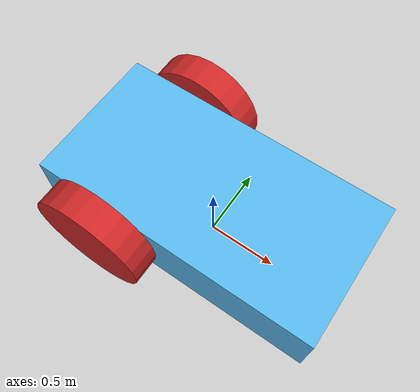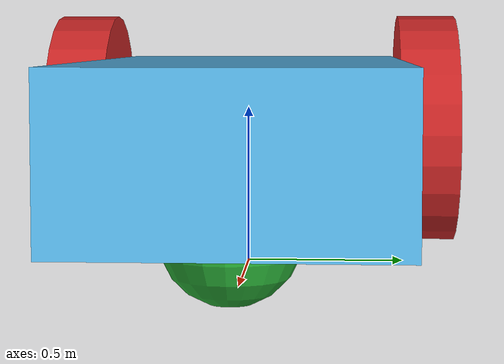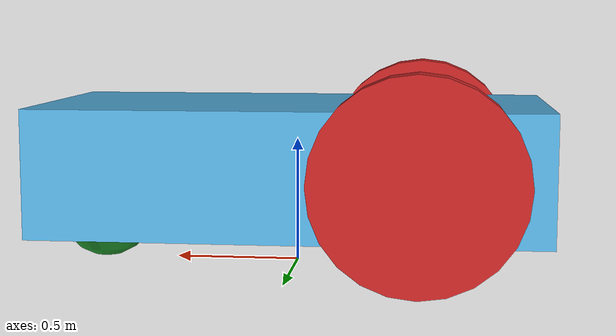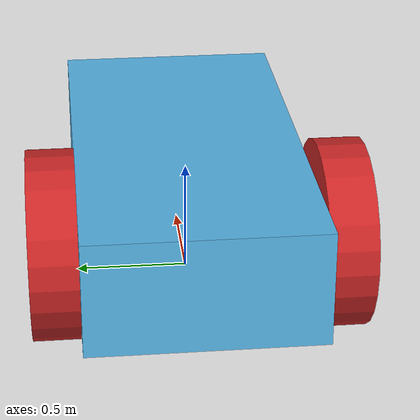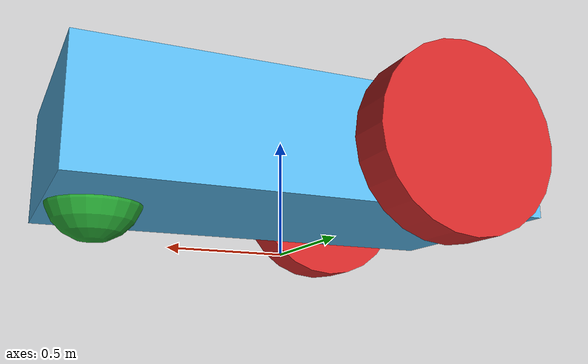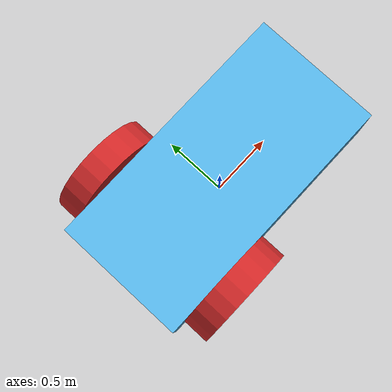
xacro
<?xml version="1.0"?>
<robot name="clown_car" xmlns:xacro="http://ros.org/wiki/xacro">

    <!-- Define robot constants -->
    <xacro:property name="base_width" value="1.0" />
    <xacro:property name="base_length" value="2.0" />
    <xacro:property name="base_height" value="0.5" />

    <xacro:property name="wheel_radius" value="0.4" />
    <xacro:property name="wheel_width" value="0.2" />
    <xacro:property name="wheel_ygap" value="1.2" />
    <xacro:property name="wheel_zoff" value="0.0" />
    <xacro:property name="wheel_xoff" value="-0.5" />

    <xacro:property name="caster_xoff" value="0.8" />
    <xacro:property name="caster_zoff" value="-0.2" />
    <xacro:property name="imu_zoff" value="0.15" />
    <xacro:property name="lidar_zoff" value="0.25" />
    <xacro:property name="base_link_zoff" value="0.4" />

    <link name="base_footprint">
        <inertial>
        <mass value="0.01" />
        <inertia ixx="0.0001" ixy="0.0" ixz="0.0" iyy="0.0001" iyz="0.0" izz="0.0001" />
        </inertial>
    </link>

    <joint name="base_footprint_joint" type="fixed">
        <parent link="base_footprint" />
        <child link="base_link" />
        <origin xyz="0 0 ${base_link_zoff}" rpy="0 0 0" />
    </joint>

    <link name="base_link">
        <inertial>
            <origin xyz="0 0 0" rpy="0 0 0" />
            <mass value="1.14395" />
            <inertia ixx="0.095329" ixy="0.0" ixz="0.0" iyy="0.381317" iyz="0.0" izz="0.476646" />
        </inertial>
        <visual>
            <origin xyz="0 0 0" rpy="0 0 0" />
            <geometry>
                <box size="${base_length} ${base_width} ${base_height}" />
            </geometry>
        </visual>
        <collision>
            <origin xyz="0 0 0" rpy="0 0 0" />
            <geometry>
                <box size="${base_length} ${base_width} ${base_height}" />
            </geometry>
        </collision>
    </link>

    <link name="imu_link" />

    <joint name="imu_joint" type="fixed">
        <parent link="base_link" />
        <child link="imu_link" />
        <origin xyz="0 0 ${imu_zoff}" rpy="0 0 0" />
    </joint>

    <link name="lidar_link" />

    <joint name="lidar_joint" type="fixed">
        <parent link="base_link" />
        <child link="lidar_link" />
        <origin xyz="0 0 ${lidar_zoff}" rpy="0 0 0" />
    </joint>

    <gazebo reference="imu_link">
        <sensor name="imu_sensor" type="imu">
            <always_on>1</always_on>
            <update_rate>100</update_rate>
            <visualize>true</visualize>
            <topic>/imu</topic>
            <gz_frame_id>imu_link</gz_frame_id>
        </sensor>
    </gazebo>

    <gazebo reference="lidar_link">
        <material>Gazebo/Blue</material>

        <sensor name="gpu_lidar" type="gpu_lidar">
            <gz_frame_id>lidar_link</gz_frame_id>
            <pose>0 0 0 0 0 0</pose>
            <topic>lidar</topic>
            <update_rate>10</update_rate>
            <ray>
                <scan>
                    <horizontal>
                        <samples>640</samples>
                        <resolution>10</resolution>
                        <min_angle>-1.396263</min_angle>
                        <max_angle>1.396263</max_angle>
                    </horizontal>
                    <vertical>
                        <samples>1</samples>
                        <resolution>0.01</resolution>
                        <min_angle>0</min_angle>
                        <max_angle>0</max_angle>
                    </vertical>
                </scan>
                <range>
                    <min>0.08</min>
                    <max>10.0</max>
                    <resolution>0.01</resolution>
                </range>
            </ray>
            <always_on>1</always_on>
            <visualize>true</visualize>
        </sensor>
    </gazebo>

    <link name="left_wheel">
        <inertial>
            <origin xyz="0 0 0" rpy="0 0 0" />
            <mass value="1.0" />
            <inertia ixx="0.043333" ixy="0.0" ixz="0.0" iyy="0.043333" iyz="0.0" izz="0.08" />
        </inertial>
        <visual>
            <origin xyz="0 0 0" rpy="0 0 0" />
            <geometry>
                <cylinder radius="${wheel_radius}" length="${wheel_width}" />
            </geometry>
        </visual>
        <collision>
            <origin xyz="0 0 0" rpy="0 0 0" />
            <geometry>
                <cylinder radius="${wheel_radius}" length="${wheel_width}" />
            </geometry>
        </collision>
    </link>

    <joint name="left_wheel_joint" type="continuous">
        <origin xyz="${wheel_xoff} ${wheel_ygap / 2.0} ${wheel_zoff}" rpy="-1.5707 0 0" />
        <parent link="base_link" />
        <child link="left_wheel" />
        <axis xyz="0 0 1" />
    </joint>

    <gazebo reference="left_wheel">
        <material>Gazebo/Red</material>
    </gazebo>

    <link name="right_wheel">
        <inertial>
            <origin xyz="0 0 0" rpy="0 0 0" />
            <mass value="1.0" />
            <inertia ixx="0.043333" ixy="0.0" ixz="0.0" iyy="0.043333" iyz="0.0" izz="0.08" />
        </inertial>
        <visual>
            <origin xyz="0 0 0" rpy="0 0 0" />
            <geometry>
                <cylinder radius="${wheel_radius}" length="${wheel_width}" />
            </geometry>
        </visual>
        <collision>
            <origin xyz="0 0 0" rpy="0 0 0" />
            <geometry>
                <cylinder radius="${wheel_radius}" length="${wheel_width}" />
            </geometry>
        </collision>
    </link>

    <joint name="right_wheel_joint" type="continuous">
        <origin xyz="${wheel_xoff} ${-wheel_ygap / 2.0} ${wheel_zoff}" rpy="-1.5707 0 0" />
        <parent link="base_link" />
        <child link="right_wheel" />
        <axis xyz="0 0 1" />
    </joint>

    <gazebo reference="right_wheel">
        <material>Gazebo/Red</material>
    </gazebo>

    <link name="caster">
        <inertial>
            <origin xyz="0 0 0" rpy="0 0 0" />
            <mass value="1.0" />
            <inertia ixx="0.016" ixy="0.0" ixz="0.0" iyy="0.016" iyz="0.0" izz="0.016" />
        </inertial>
        <visual>
            <origin xyz="0 0 0" rpy="0 0 0" />
            <geometry>
                <sphere radius="0.2" />
            </geometry>
        </visual>
        <collision>
            <origin xyz="0 0 0" rpy="0 0 0" />
            <geometry>
                <sphere radius="0.2" />
            </geometry>
        </collision>
    </link>

    <joint name="caster_wheel" type="continuous">
        <origin xyz="${caster_xoff} 0 ${caster_zoff}" rpy="0 0 0" />
        <parent link="base_link" />
        <child link="caster" />
        <axis xyz="0 0 1" />
    </joint>

    <gazebo reference="caster">
        <material>Gazebo/Green</material>
        <mu1 value="0.0" />
        <mu2 value="0.0" />
    </gazebo>

    <gazebo>
        <plugin
            filename="gz-sim-diff-drive-system"
            name="gz::sim::systems::DiffDrive">
            <left_joint>left_wheel_joint</left_joint>
            <right_joint>right_wheel_joint</right_joint>
            <wheel_separation>${wheel_ygap}</wheel_separation>
            <wheel_radius>${wheel_radius}</wheel_radius>
            <odom_publish_frequency>10</odom_publish_frequency>
            <topic>/cmd_vel</topic>

            <frame_id>odom</frame_id>
            <child_frame_id>base_footprint</child_frame_id>

        </plugin>
    </gazebo>

    <gazebo>
        <plugin
            filename="gz-sim-joint-state-publisher-system"
            name="gz::sim::systems::JointStatePublisher">
            <joint_name>left_wheel_joint</joint_name>
            <joint_name>right_wheel_joint</joint_name>
            <joint_name>caster_wheel</joint_name>
        </plugin>
    </gazebo>

</robot>
